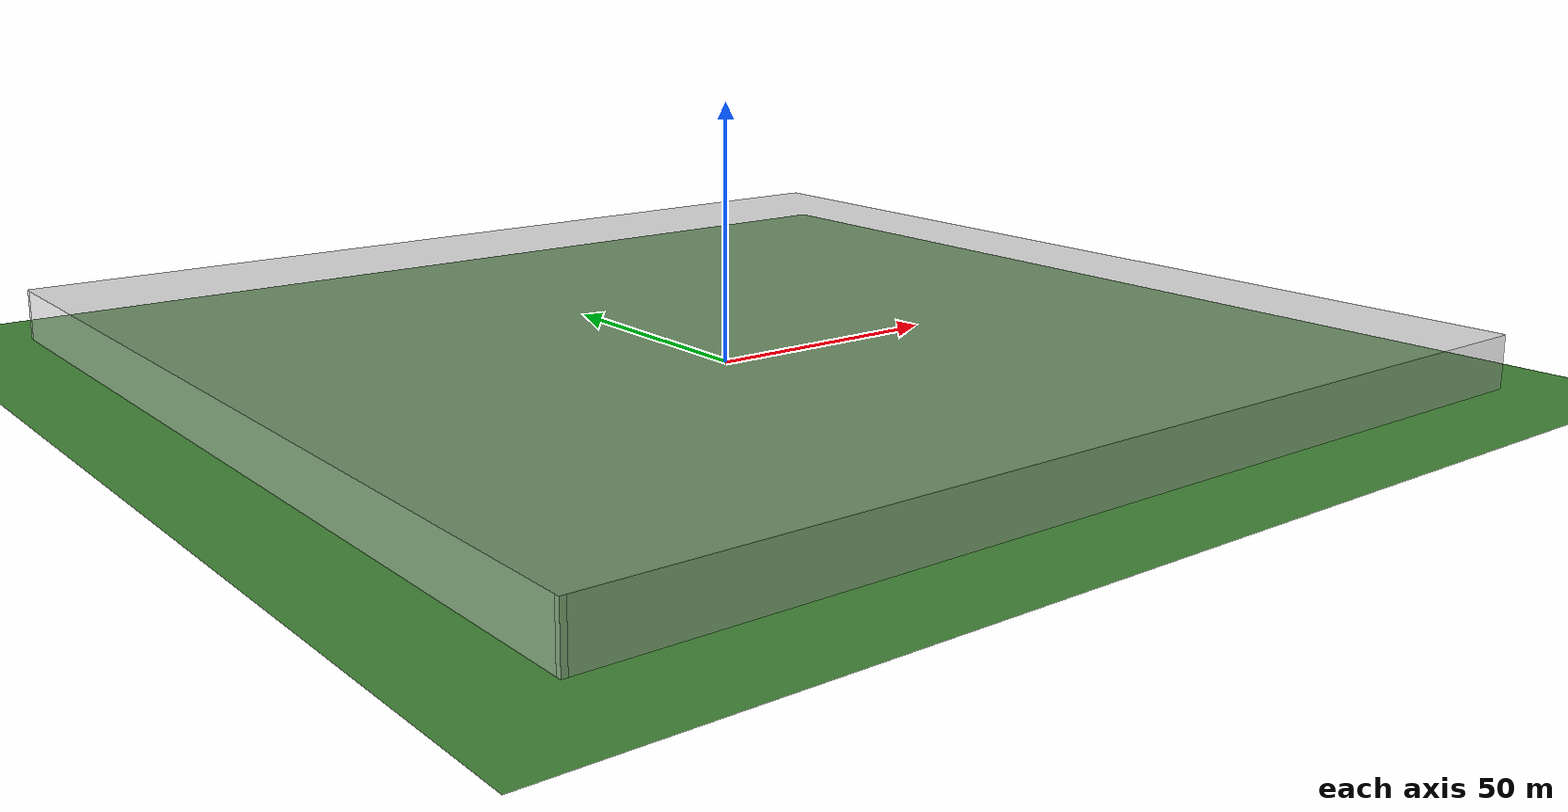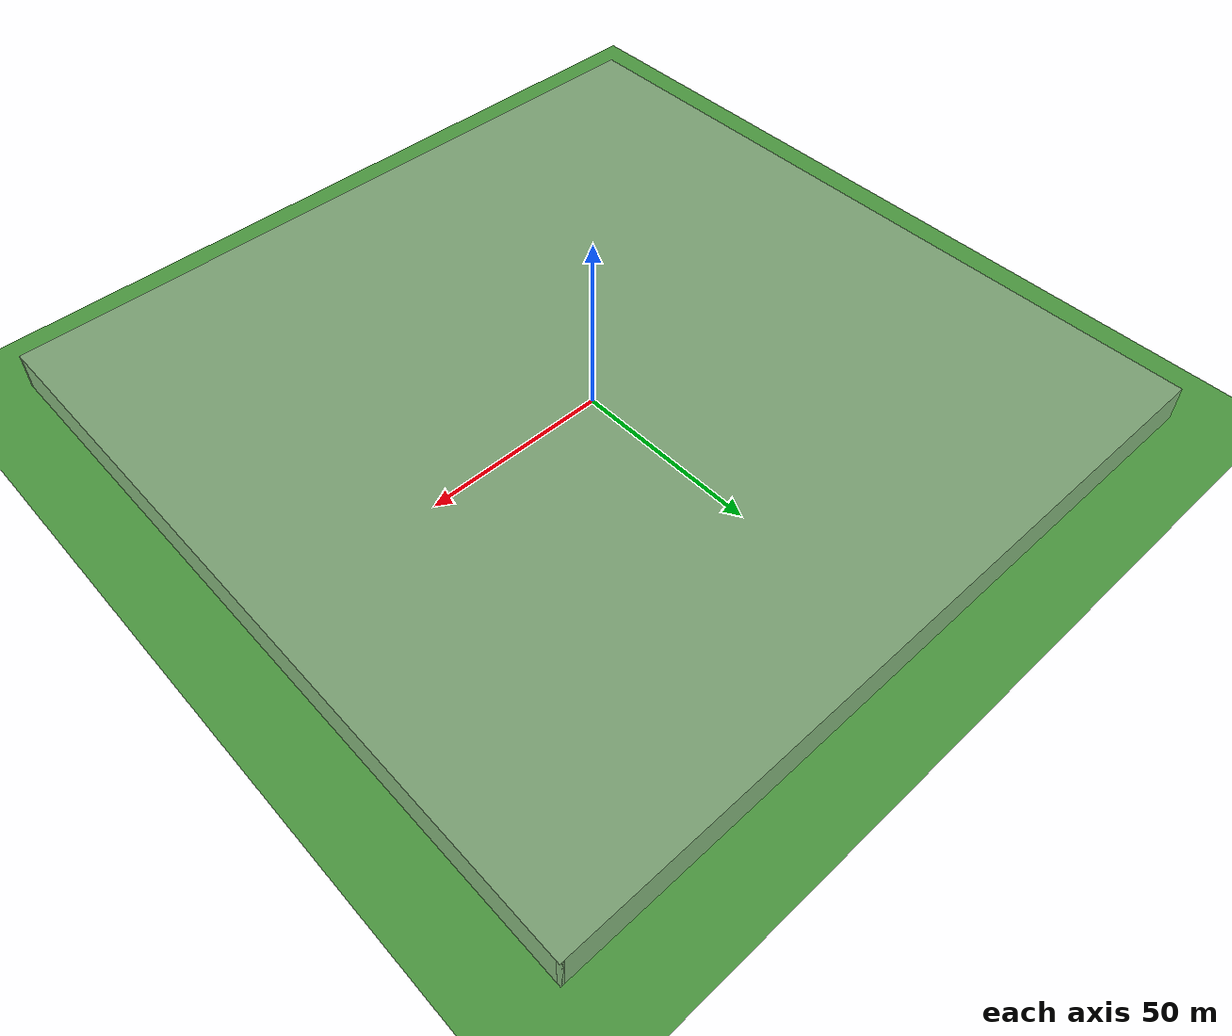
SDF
<sdf version="1.5">
 <world name="default">
  <plugin name="mrs_gazebo_static_transform_republisher_plugin" filename="libMRSGazeboStaticTransformRepublisher.so"/>
  <spherical_coordinates>
   <surface_model>EARTH_WGS84</surface_model>
   <latitude_deg>47.397743</latitude_deg>
   <longitude_deg>8.545594</longitude_deg>
   <elevation>0.0</elevation>
   <heading_deg>0.0</heading_deg>
  </spherical_coordinates>
  <physics name="default_physics" default="0" type="ode">
   <gravity>0 0 -9.8066</gravity>
   <ode>
    <solver>
     <type>quick</type>
     <iters>50</iters>
     <sor>1.0</sor>
     <use_dynamic_moi_rescaling>0</use_dynamic_moi_rescaling>
    </solver>
    <constraints>
     <cfm>0</cfm>
     <erp>0.2</erp>
     <contact_max_correcting_vel>1000</contact_max_correcting_vel>
     <contact_surface_layer>0.001</contact_surface_layer>
    </constraints>
   </ode>
   <max_step_size>0.004</max_step_size>
   <real_time_factor>1</real_time_factor>
   <real_time_update_rate>250</real_time_update_rate>
   <magnetic_field>6.0e-06 2.3e-05 -4.2e-05</magnetic_field>
  </physics>
  <scene><shadows>false</shadows></scene>
  <light type="directional" name="sun">
   <cast_shadows>false</cast_shadows>
   <pose>250 250 600 0 0 0</pose>
   <diffuse>0.8 0.8 0.8 1</diffuse>
   <specular>0.2 0.2 0.2 1</specular>
   <attenuation>
    <range>1000</range>
    <constant>0.9</constant>
    <linear>0.01</linear>
    <quadratic>0.001</quadratic>
   </attenuation>
   <direction>0 0 -1</direction>
  </light>
  <model name="ground_plane">
   <static>true</static>
   <link name="link">
    <collision name="collision">
     <geometry><plane><normal>0 0 1</normal><size>210 210</size></plane></geometry>
     <surface><friction><ode><mu>1</mu><mu2>1</mu2></ode></friction></surface>
    </collision>
    <visual name="grass">
     <cast_shadows>false</cast_shadows>
     <geometry><plane><normal>0 0 1</normal><size>210 210</size></plane></geometry>
     <material>
      <script><uri>file://media/materials/scripts/Gazebo.material</uri><name>Gazebo/Grass</name></script>
     </material>
    </visual>
   </link>
  </model>
  <model name="walls_roof"><include><static>true</static><uri>model://walled_roof</uri></include></model>
 </world>
</sdf>

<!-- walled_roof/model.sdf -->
<sdf version="1.5">
  <model name='walled_roof'>

    <static>true</static>

      <!-- roof {-->

      <link name='roof'>

        <pose>0 0 10.1 0 -0 0</pose>

        <collision name='roof_collision'>
          <geometry>
            <box>
              <size>201 201 0.1</size>
            </box>
          </geometry>
          <pose>0 0 0.05 0 -0 0</pose>
        </collision>

        <visual name='roof_visual'>
          <pose>0 0 0.05 0 -0 0</pose>
          <geometry>
            <box>
              <size>201 201 0.1</size>
            </box>
          </geometry>

          <material>
            <script>
              <uri>model://column/materials/scripts</uri>
              <uri>model://column/materials/textures</uri>
              <name>Task02/Glass</name>
            </script>
          </material>

          <meta>
            <layer>1</layer>
          </meta>

        </visual>

      </link>

      <!-- wall 1 {-->

      <link name='wall_1'>

        <pose>100 0 0 0 -0 -1.5708</pose>

        <collision name='wall_1_collision'>
          <geometry>
            <box>
              <size>201 1 10.1</size>
            </box>
          </geometry>
          <pose>0 0 5.05 0 -0 0</pose>
        </collision>

        <visual name='wall_1_visual'>

          <pose>0 0 5.05 0 -0 0</pose>

          <geometry>
            <box>
              <size>201 1 10.1</size>
            </box>
          </geometry>

          <material>
            <script>
              <uri>model://column/materials/scripts</uri>
              <uri>model://column/materials/textures</uri>
              <name>Task02/Glass</name>
            </script>
          </material>

          <meta>
            <layer>0</layer>
          </meta>

        </visual>

      </link>

      <!-- wall 2 {-->

      <link name='wall_2'>

        <pose>0 -100 0 0 -0 3.14159</pose>

        <collision name='wall_2_collision'>
          <geometry>
            <box>
              <size>201 1 10.1</size>
            </box>
          </geometry>
          <pose>0 0 5.05 0 -0 0</pose>
        </collision>

        <visual name='wall_2_visual'>

          <pose>0 0 5.05 0 -0 0</pose>

          <geometry>
            <box>
              <size>201 1 10.1</size>
            </box>
          </geometry>

          <material>
            <script>
              <uri>model://column/materials/scripts</uri>
              <uri>model://column/materials/textures</uri>
              <name>Task02/Glass</name>
            </script>
          </material>

          <meta>
            <layer>0</layer>
          </meta>

        </visual>

      </link>

      <!-- wall 3 {-->

      <link name='wall_3'>

        <pose>-100 0 0 0 -0 1.5708</pose>

        <collision name='wall_3_collision'>
          <geometry>
            <box>
              <size>201 1 10.1</size>
            </box>
          </geometry>
          <pose>0 0 5.05 0 -0 0</pose>
        </collision>

        <visual name='wall_3_visual'>

          <pose>0 0 5.05 0 -0 0</pose>

          <geometry>
            <box>
              <size>201 1 10.1</size>
            </box>
          </geometry>

          <material>
            <script>
              <uri>model://column/materials/scripts</uri>
              <uri>model://column/materials/textures</uri>
              <name>Task02/Glass</name>
            </script>
          </material>

          <meta>
            <layer>0</layer>
          </meta>

        </visual>

      </link>

      <!-- wall 4 {-->

      <link name='wall_4'>

        <pose>0 100 0 0 -0 0</pose>

        <collision name='wall_4_collision'>
          <geometry>
            <box>
              <size>201.001 1 10.1</size>
            </box>
          </geometry>
          <pose>0 0 5.05 0 -0 0</pose>
        </collision>

        <visual name='wall_4_visual'>

          <pose>0 0 5.05 0 -0 0</pose>

          <geometry>
            <box>
              <size>201.001 1 10.1</size>
            </box>
          </geometry>

          <material>
            <script>
              <uri>model://column/materials/scripts</uri>
              <uri>model://column/materials/textures</uri>
              <name>Task02/Glass</name>
            </script>
          </material>

          <meta>
            <layer>0</layer>
          </meta>

        </visual>

      </link>

  </model>
</sdf>
